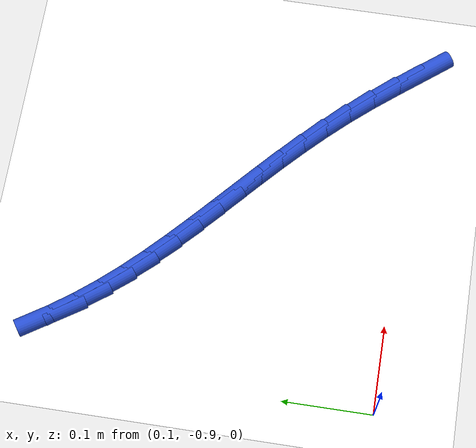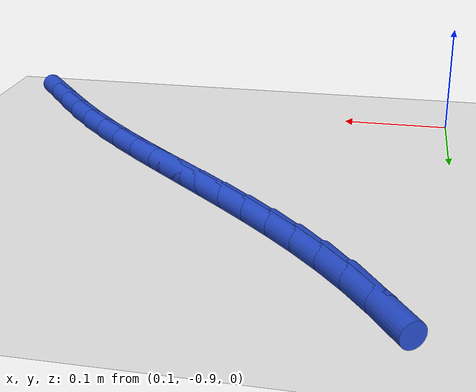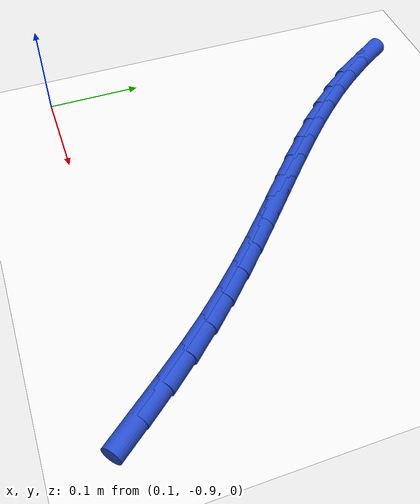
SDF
<sdf version="1.6">
 <world name="default">
  <model name="ground_plane">
   <static>1</static>
   <link name="link">
    <collision name="collision">
     <geometry><plane><normal>0 0 1</normal><size>100 100</size></plane></geometry>
     <surface><friction><ode><mu>100</mu><mu2>50</mu2></ode></friction></surface>
    </collision>
    <visual name="visual">
     <cast_shadows>0</cast_shadows>
     <geometry><plane><normal>0 0 1</normal><size>100 100</size></plane></geometry>
     <material>
      <script><uri>file://media/materials/scripts/gazebo.material</uri><name>Gazebo/WhiteGlow</name></script>
     </material>
    </visual>
   </link>
  </model>
  <model name="line">
   <link name="link_176">
    <pose>0.5070732217736978 -0.9041473577959479 0.01 0 1.57 -0.8961048531238062</pose>
    <collision name="collision">
     <geometry><cylinder><radius>0.01</radius><length>0.08</length></cylinder></geometry>
    </collision>
    <visual name="visual">
     <material>
      <script><name>Gazebo/Blue</name><uri>file://media/materials/scripts/gazebo.material</uri></script>
     </material>
     <geometry><cylinder><radius>0.01</radius><length>0.08</length></cylinder></geometry>
    </visual>
   </link>
   <link name="link_177">
    <pose>0.485638481556199 -0.8773512152205202 0.01 0 1.57 -0.8824577649046891</pose>
    <collision name="collision">
     <geometry><cylinder><radius>0.01</radius><length>0.08</length></cylinder></geometry>
    </collision>
    <visual name="visual">
     <material>
      <script><name>Gazebo/Blue</name><uri>file://media/materials/scripts/gazebo.material</uri></script>
     </material>
     <geometry><cylinder><radius>0.01</radius><length>0.08</length></cylinder></geometry>
    </visual>
   </link>
   <link name="link_178">
    <pose>0.46392127367988845 -0.8509488158014362 0.01 0 1.57 -0.8504802645732623</pose>
    <collision name="collision">
     <geometry><cylinder><radius>0.01</radius><length>0.08</length></cylinder></geometry>
    </collision>
    <visual name="visual">
     <material>
      <script><name>Gazebo/Blue</name><uri>file://media/materials/scripts/gazebo.material</uri></script>
     </material>
     <geometry><cylinder><radius>0.01</radius><length>0.08</length></cylinder></geometry>
    </visual>
   </link>
   <link name="link_179">
    <pose>0.44169780556743926 -0.825626598222831 0.01 0 1.57 -0.8124044726332388</pose>
    <collision name="collision">
     <geometry><cylinder><radius>0.01</radius><length>0.08</length></cylinder></geometry>
    </collision>
    <visual name="visual">
     <material>
      <script><name>Gazebo/Blue</name><uri>file://media/materials/scripts/gazebo.material</uri></script>
     </material>
     <geometry><cylinder><radius>0.01</radius><length>0.08</length></cylinder></geometry>
    </visual>
   </link>
   <link name="link_180">
    <pose>0.41893616583079607 -0.8016011033863719 0.01 0 1.57 -0.7802869010771275</pose>
    <collision name="collision">
     <geometry><cylinder><radius>0.01</radius><length>0.08</length></cylinder></geometry>
    </collision>
    <visual name="visual">
     <material>
      <script><name>Gazebo/Blue</name><uri>file://media/materials/scripts/gazebo.material</uri></script>
     </material>
     <geometry><cylinder><radius>0.01</radius><length>0.08</length></cylinder></geometry>
    </visual>
   </link>
   <link name="link_181">
    <pose>0.39577374786415775 -0.7786742617671076 0.01 0 1.57 -0.7550622448743142</pose>
    <collision name="collision">
     <geometry><cylinder><radius>0.01</radius><length>0.08</length></cylinder></geometry>
    </collision>
    <visual name="visual">
     <material>
      <script><name>Gazebo/Blue</name><uri>file://media/materials/scripts/gazebo.material</uri></script>
     </material>
     <geometry><cylinder><radius>0.01</radius><length>0.08</length></cylinder></geometry>
    </visual>
   </link>
   <link name="link_182">
    <pose>0.3723537545428955 -0.7566337770035199 0.01 0 1.57 -0.7371527045644983</pose>
    <collision name="collision">
     <geometry><cylinder><radius>0.01</radius><length>0.08</length></cylinder></geometry>
    </collision>
    <visual name="visual">
     <material>
      <script><name>Gazebo/Blue</name><uri>file://media/materials/scripts/gazebo.material</uri></script>
     </material>
     <geometry><cylinder><radius>0.01</radius><length>0.08</length></cylinder></geometry>
    </visual>
   </link>
   <link name="link_183">
    <pose>0.34881938874238055 -0.7352673527340896 0.01 0 1.57 -0.726900158315576</pose>
    <collision name="collision">
     <geometry><cylinder><radius>0.01</radius><length>0.08</length></cylinder></geometry>
    </collision>
    <visual name="visual">
     <material>
      <script><name>Gazebo/Blue</name><uri>file://media/materials/scripts/gazebo.material</uri></script>
     </material>
     <geometry><cylinder><radius>0.01</radius><length>0.08</length></cylinder></geometry>
    </visual>
   </link>
   <link name="link_184">
    <pose>0.3253138533379854 -0.7143626925972995 0.01 0 1.57 -0.7245869137541708</pose>
    <collision name="collision">
     <geometry><cylinder><radius>0.01</radius><length>0.08</length></cylinder></geometry>
    </collision>
    <visual name="visual">
     <material>
      <script><name>Gazebo/Blue</name><uri>file://media/materials/scripts/gazebo.material</uri></script>
     </material>
     <geometry><cylinder><radius>0.01</radius><length>0.08</length></cylinder></geometry>
    </visual>
   </link>
   <link name="link_185">
    <pose>0.3019803512050811 -0.6937075002316303 0.01 0 1.57 -0.7304478265721744</pose>
    <collision name="collision">
     <geometry><cylinder><radius>0.01</radius><length>0.08</length></cylinder></geometry>
    </collision>
    <visual name="visual">
     <material>
      <script><name>Gazebo/Blue</name><uri>file://media/materials/scripts/gazebo.material</uri></script>
     </material>
     <geometry><cylinder><radius>0.01</radius><length>0.08</length></cylinder></geometry>
    </visual>
   </link>
   <link name="link_186">
    <pose>0.27896208521903915 -0.6730894792755637 0.01 0 1.57 -0.7446696051264349</pose>
    <collision name="collision">
     <geometry><cylinder><radius>0.01</radius><length>0.08</length></cylinder></geometry>
    </collision>
    <visual name="visual">
     <material>
      <script><name>Gazebo/Blue</name><uri>file://media/materials/scripts/gazebo.material</uri></script>
     </material>
     <geometry><cylinder><radius>0.01</radius><length>0.08</length></cylinder></geometry>
    </visual>
   </link>
   <link name="link_187">
    <pose>0.25640225825523105 -0.6522963333675812 0.01 0 1.57 -0.7673741456701427</pose>
    <collision name="collision">
     <geometry><cylinder><radius>0.01</radius><length>0.08</length></cylinder></geometry>
    </collision>
    <visual name="visual">
     <material>
      <script><name>Gazebo/Blue</name><uri>file://media/materials/scripts/gazebo.material</uri></script>
     </material>
     <geometry><cylinder><radius>0.01</radius><length>0.08</length></cylinder></geometry>
    </visual>
   </link>
   <link name="link_188">
    <pose>0.23444407318902832 -0.6311157661461643 0.01 0 1.57 -0.7985841122953572</pose>
    <collision name="collision">
     <geometry><cylinder><radius>0.01</radius><length>0.08</length></cylinder></geometry>
    </collision>
    <visual name="visual">
     <material>
      <script><name>Gazebo/Blue</name><uri>file://media/materials/scripts/gazebo.material</uri></script>
     </material>
     <geometry><cylinder><radius>0.01</radius><length>0.08</length></cylinder></geometry>
    </visual>
   </link>
   <link name="link_189">
    <pose>0.213230732895802 -0.6093354812497939 0.01 0 1.57 -0.8381714263715769</pose>
    <collision name="collision">
     <geometry><cylinder><radius>0.01</radius><length>0.08</length></cylinder></geometry>
    </collision>
    <visual name="visual">
     <material>
      <script><name>Gazebo/Blue</name><uri>file://media/materials/scripts/gazebo.material</uri></script>
     </material>
     <geometry><cylinder><radius>0.01</radius><length>0.08</length></cylinder></geometry>
    </visual>
   </link>
   <link name="link_190">
    <pose>0.19290544025092454 -0.5867431823169525 0.01 0 1.57 -0.8857936249242592</pose>
    <collision name="collision">
     <geometry><cylinder><radius>0.01</radius><length>0.08</length></cylinder></geometry>
    </collision>
    <visual name="visual">
     <material>
      <script><name>Gazebo/Blue</name><uri>file://media/materials/scripts/gazebo.material</uri></script>
     </material>
     <geometry><cylinder><radius>0.01</radius><length>0.08</length></cylinder></geometry>
    </visual>
   </link>
   <link name="link_191">
    <pose>0.17361139811504742 -0.5631265730144078 0.01 0 1.57 -0.9389682205629024</pose>
    <collision name="collision">
     <geometry><cylinder><radius>0.01</radius><length>0.08</length></cylinder></geometry>
    </collision>
    <visual name="visual">
     <material>
      <script><name>Gazebo/Blue</name><uri>file://media/materials/scripts/gazebo.material</uri></script>
     </material>
     <geometry><cylinder><radius>0.01</radius><length>0.08</length></cylinder></geometry>
    </visual>
   </link>
   <link name="link_192">
    <pose>0.15546233213684557 -0.5383300032335977 0.01 0 1.57 -0.9900020339915538</pose>
    <collision name="collision">
     <geometry><cylinder><radius>0.01</radius><length>0.08</length></cylinder></geometry>
    </collision>
    <visual name="visual">
     <material>
      <script><name>Gazebo/Blue</name><uri>file://media/materials/scripts/gazebo.material</uri></script>
     </material>
     <geometry><cylinder><radius>0.01</radius><length>0.08</length></cylinder></geometry>
    </visual>
   </link>
  </model>
 </world>
</sdf>
